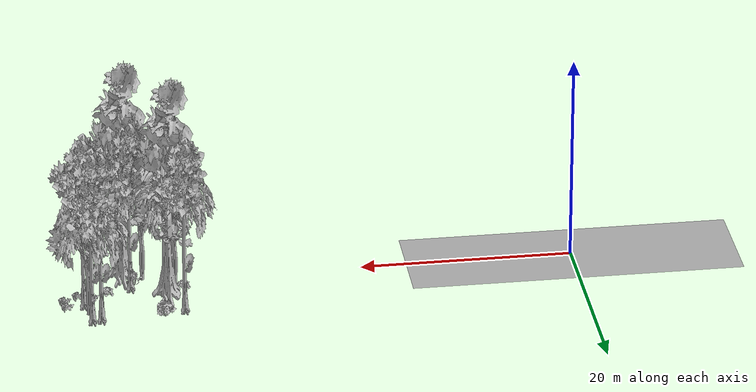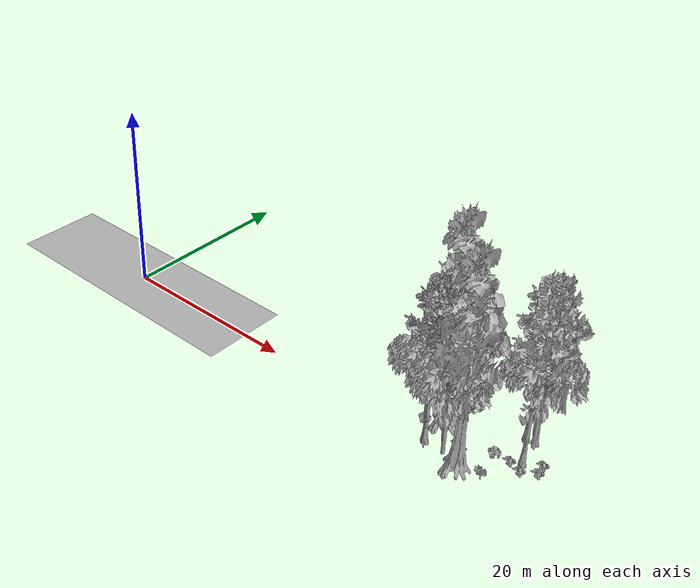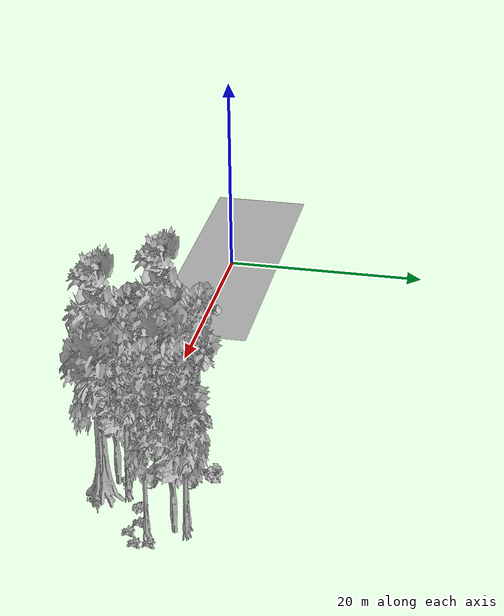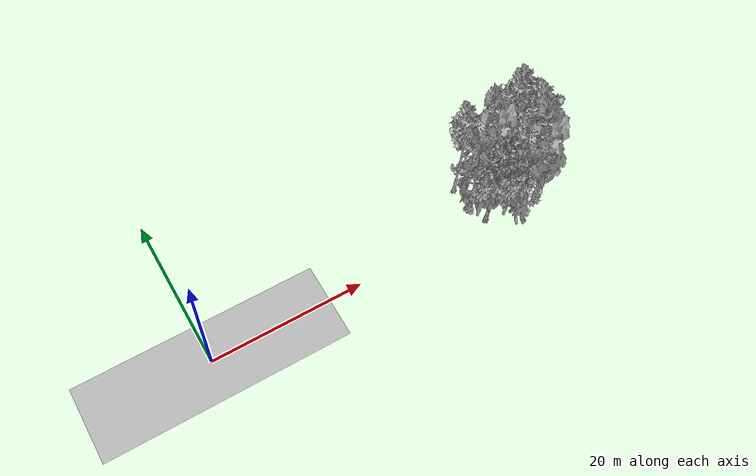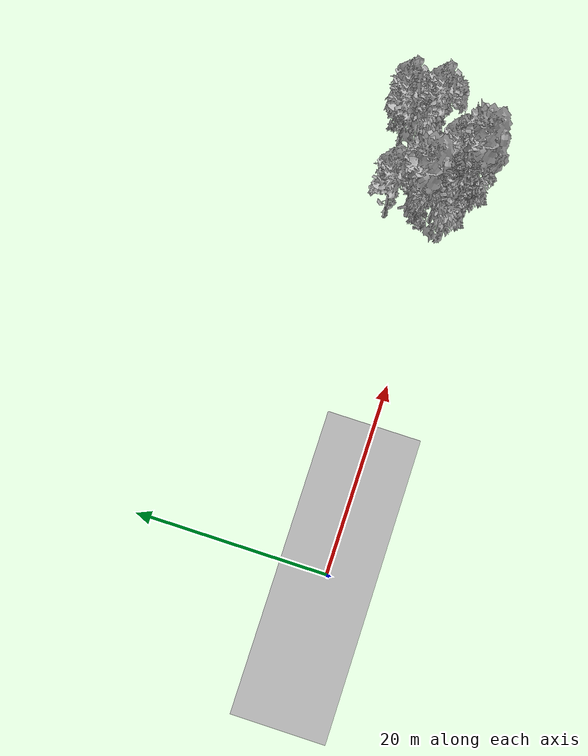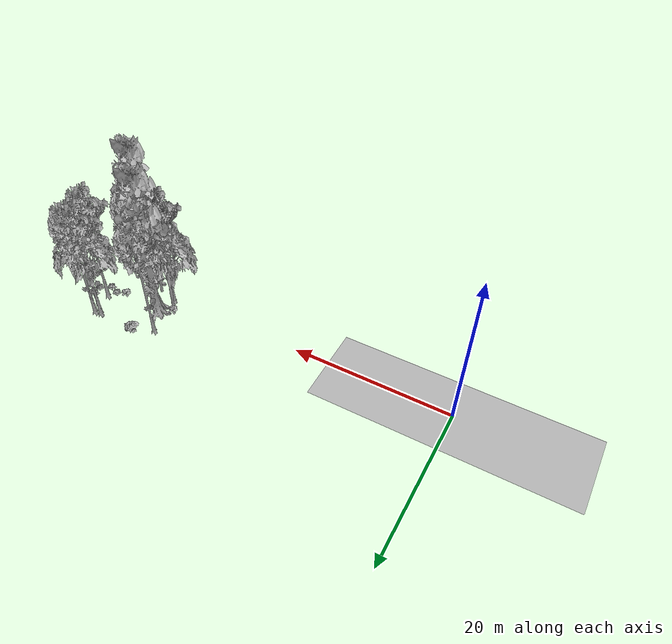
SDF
<sdf version="1.7">
 <world name="default">
  <model name="ground_plane">
   <static>1</static>
   <link name="link">
    <collision name="collision">
     <geometry><plane><normal>0 0 1</normal><size>100 100</size></plane></geometry>
     <surface><contact><ode><min_depth>0.01</min_depth><max_vel>0</max_vel></ode></contact></surface>
    </collision>
    <visual name="grass">
     <cast_shadows>0</cast_shadows>
     <geometry>
      <mesh>
       <scale>0.5814285714285714 0.18142857142857144 0.1</scale>
       <uri>file://grass_plane/meshes/grass_plane.dae</uri>
      </mesh>
     </geometry>
    </visual>
   </link>
  </model>
  <model name="Tree 24">
   <static>1</static>
   <pose>41.74323365666531 0.7387687377067191 0 1.57079 -0 0</pose>
   <link name="link">
    <collision name="collision">
     <geometry><mesh><scale>3.5 5 3.5</scale><uri>model://tree_9/meshes/tree_9.obj</uri></mesh></geometry>
    </collision>
    <visual name="visual">
     <geometry><mesh><scale>3.5 5 3.5</scale><uri>model://tree_9/meshes/tree_9.obj</uri></mesh></geometry>
    </visual>
   </link>
  </model>
  <model name="Tree 39">
   <static>1</static>
   <pose>37.53421178844465 1.0300258469718635 0 1.57079 -0 0</pose>
   <link name="link">
    <collision name="collision">
     <geometry><mesh><scale>3.5 5 3.5</scale><uri>model://tree_2/meshes/tree_2.obj</uri></mesh></geometry>
    </collision>
    <visual name="visual">
     <geometry><mesh><scale>3.5 5 3.5</scale><uri>model://tree_2/meshes/tree_2.obj</uri></mesh></geometry>
    </visual>
   </link>
  </model>
  <model name="Tree 68">
   <static>1</static>
   <pose>40.46725836753879 -0.43727353684468717 0 1.57079 -0 0</pose>
   <link name="link">
    <collision name="collision">
     <geometry><mesh><scale>3.5 5 3.5</scale><uri>model://tree_2/meshes/tree_2.obj</uri></mesh></geometry>
    </collision>
    <visual name="visual">
     <geometry><mesh><scale>3.5 5 3.5</scale><uri>model://tree_2/meshes/tree_2.obj</uri></mesh></geometry>
    </visual>
   </link>
  </model>
  <model name="Tree 99">
   <static>1</static>
   <pose>44.91978720802875 6.534674968186387 0 1.57079 -0 0</pose>
   <link name="link">
    <collision name="collision">
     <geometry><mesh><scale>3.5 5 3.5</scale><uri>model://tree_9/meshes/tree_9.obj</uri></mesh></geometry>
    </collision>
    <visual name="visual">
     <geometry><mesh><scale>3.5 5 3.5</scale><uri>model://tree_9/meshes/tree_9.obj</uri></mesh></geometry>
    </visual>
   </link>
  </model>
  <model name="Tree 147">
   <static>1</static>
   <pose>45.78109865384833 6.644941578945236 0 1.57079 -0 0</pose>
   <link name="link">
    <collision name="collision">
     <geometry><mesh><scale>3.5 5 3.5</scale><uri>model://tree_9/meshes/tree_9.obj</uri></mesh></geometry>
    </collision>
    <visual name="visual">
     <geometry><mesh><scale>3.5 5 3.5</scale><uri>model://tree_9/meshes/tree_9.obj</uri></mesh></geometry>
    </visual>
   </link>
  </model>
  <model name="Tree 180">
   <static>1</static>
   <pose>42.36621499290425 -1.1296525667263246 0 1.57079 -0 0</pose>
   <link name="link">
    <collision name="collision">
     <geometry><mesh><scale>3.5 5 3.5</scale><uri>model://tree_4/meshes/tree_4.obj</uri></mesh></geometry>
    </collision>
    <visual name="visual">
     <geometry><mesh><scale>3.5 5 3.5</scale><uri>model://tree_4/meshes/tree_4.obj</uri></mesh></geometry>
    </visual>
   </link>
  </model>
  <model name="Tree 193">
   <static>1</static>
   <pose>37.126474166906604 5.6413936673820295 0 1.57079 -0 0</pose>
   <link name="link">
    <collision name="collision">
     <geometry><mesh><scale>3.5 5 3.5</scale><uri>model://tree_9/meshes/tree_9.obj</uri></mesh></geometry>
    </collision>
    <visual name="visual">
     <geometry><mesh><scale>3.5 5 3.5</scale><uri>model://tree_9/meshes/tree_9.obj</uri></mesh></geometry>
    </visual>
   </link>
  </model>
  <model name="Tree 216">
   <static>1</static>
   <pose>46.31710641081834 3.5529073931446824 0 1.57079 -0 0</pose>
   <link name="link">
    <collision name="collision">
     <geometry><mesh><scale>3.5 5 3.5</scale><uri>model://tree_9/meshes/tree_9.obj</uri></mesh></geometry>
    </collision>
    <visual name="visual">
     <geometry><mesh><scale>3.5 5 3.5</scale><uri>model://tree_9/meshes/tree_9.obj</uri></mesh></geometry>
    </visual>
   </link>
  </model>
  <model name="Tree 219">
   <static>1</static>
   <pose>45.952495006505586 5.7372568438727924 0 1.57079 -0 0</pose>
   <link name="link">
    <collision name="collision">
     <geometry><mesh><scale>3.5 5 3.5</scale><uri>model://tree_2/meshes/tree_2.obj</uri></mesh></geometry>
    </collision>
    <visual name="visual">
     <geometry><mesh><scale>3.5 5 3.5</scale><uri>model://tree_2/meshes/tree_2.obj</uri></mesh></geometry>
    </visual>
   </link>
  </model>
  <model name="Tree 247">
   <static>1</static>
   <pose>38.30108733575983 0.07217429799259101 0 1.57079 -0 0</pose>
   <link name="link">
    <collision name="collision">
     <geometry><mesh><scale>3.5 5 3.5</scale><uri>model://tree_9/meshes/tree_9.obj</uri></mesh></geometry>
    </collision>
    <visual name="visual">
     <geometry><mesh><scale>3.5 5 3.5</scale><uri>model://tree_9/meshes/tree_9.obj</uri></mesh></geometry>
    </visual>
   </link>
  </model>
  <model name="Tree 265">
   <static>1</static>
   <pose>38.22866188104973 0.09220415026919326 0 1.57079 -0 0</pose>
   <link name="link">
    <collision name="collision">
     <geometry><mesh><scale>3.5 5 3.5</scale><uri>model://tree_9/meshes/tree_9.obj</uri></mesh></geometry>
    </collision>
    <visual name="visual">
     <geometry><mesh><scale>3.5 5 3.5</scale><uri>model://tree_9/meshes/tree_9.obj</uri></mesh></geometry>
    </visual>
   </link>
  </model>
  <model name="Tree 268">
   <static>1</static>
   <pose>38.41611702322423 2.9727805636021927 0 1.57079 -0 0</pose>
   <link name="link">
    <collision name="collision">
     <geometry><mesh><scale>3.5 5 3.5</scale><uri>model://tree_4/meshes/tree_4.obj</uri></mesh></geometry>
    </collision>
    <visual name="visual">
     <geometry><mesh><scale>3.5 5 3.5</scale><uri>model://tree_4/meshes/tree_4.obj</uri></mesh></geometry>
    </visual>
   </link>
  </model>
  <model name="Bush 9">
   <static>1</static>
   <pose>47.951672995649986 4.1469242273542015 0 1.57079 -0 0</pose>
   <link name="link">
    <collision name="collision">
     <geometry><mesh><scale>2 2 2</scale><uri>model://bush_2/meshes/bush_2.obj</uri></mesh></geometry>
     <surface><contact><collide_without_contact>false</collide_without_contact></contact></surface>
    </collision>
    <visual name="visual">
     <geometry><mesh><scale>2 2 2</scale><uri>model://bush_2/meshes/bush_2.obj</uri></mesh></geometry>
    </visual>
   </link>
  </model>
  <model name="Bush 34">
   <static>1</static>
   <pose>36.97048295065976 1.9924613997104146 0 1.57079 -0 0</pose>
   <link name="link">
    <collision name="collision">
     <geometry><mesh><scale>2 2 2</scale><uri>model://bush_3/meshes/bush_3.obj</uri></mesh></geometry>
     <surface><contact><collide_without_contact>false</collide_without_contact></contact></surface>
    </collision>
    <visual name="visual">
     <geometry><mesh><scale>2 2 2</scale><uri>model://bush_3/meshes/bush_3.obj</uri></mesh></geometry>
    </visual>
   </link>
  </model>
  <model name="Bush 46">
   <static>1</static>
   <pose>41.40418166435714 0.5655573906331632 0 1.57079 -0 0</pose>
   <link name="link">
    <collision name="collision">
     <geometry><mesh><scale>2 2 2</scale><uri>model://bush_4/meshes/bush_4.obj</uri></mesh></geometry>
     <surface><contact><collide_without_contact>false</collide_without_contact></contact></surface>
    </collision>
    <visual name="visual">
     <geometry><mesh><scale>2 2 2</scale><uri>model://bush_4/meshes/bush_4.obj</uri></mesh></geometry>
    </visual>
   </link>
  </model>
  <model name="Bush 96">
   <static>1</static>
   <pose>46.78227170409484 2.171595677008227 0 1.57079 -0 0</pose>
   <link name="link">
    <collision name="collision">
     <geometry><mesh><scale>2 2 2</scale><uri>model://bush_2/meshes/bush_2.obj</uri></mesh></geometry>
     <surface><contact><collide_without_contact>false</collide_without_contact></contact></surface>
    </collision>
    <visual name="visual">
     <geometry><mesh><scale>2 2 2</scale><uri>model://bush_2/meshes/bush_2.obj</uri></mesh></geometry>
    </visual>
   </link>
  </model>
  <model name="Bush 105">
   <static>1</static>
   <pose>39.10822155712252 7.1370597909857025 0 1.57079 -0 0</pose>
   <link name="link">
    <collision name="collision">
     <geometry><mesh><scale>2 2 2</scale><uri>model://bush_1/meshes/bush_1.obj</uri></mesh></geometry>
     <surface><contact><collide_without_contact>false</collide_without_contact></contact></surface>
    </collision>
    <visual name="visual">
     <geometry><mesh><scale>2 2 2</scale><uri>model://bush_1/meshes/bush_1.obj</uri></mesh></geometry>
    </visual>
   </link>
  </model>
  <model name="Bush 187">
   <static>1</static>
   <pose>38.77588191696269 2.425976600083967 0 1.57079 -0 0</pose>
   <link name="link">
    <collision name="collision">
     <geometry><mesh><scale>2 2 2</scale><uri>model://bush_2/meshes/bush_2.obj</uri></mesh></geometry>
     <surface><contact><collide_without_contact>false</collide_without_contact></contact></surface>
    </collision>
    <visual name="visual">
     <geometry><mesh><scale>2 2 2</scale><uri>model://bush_2/meshes/bush_2.obj</uri></mesh></geometry>
    </visual>
   </link>
  </model>
  <model name="Bush 224">
   <static>1</static>
   <pose>44.83490595498695 -0.9594625876167928 0 1.57079 -0 0</pose>
   <link name="link">
    <collision name="collision">
     <geometry><mesh><scale>2 2 2</scale><uri>model://bush_5/meshes/bush_5.obj</uri></mesh></geometry>
     <surface><contact><collide_without_contact>false</collide_without_contact></contact></surface>
    </collision>
    <visual name="visual">
     <geometry><mesh><scale>2 2 2</scale><uri>model://bush_5/meshes/bush_5.obj</uri></mesh></geometry>
    </visual>
   </link>
  </model>
  <model name="Bush 290">
   <static>1</static>
   <pose>44.16534644941686 2.446400187957135 0 1.57079 -0 0</pose>
   <link name="link">
    <collision name="collision">
     <geometry><mesh><scale>2 2 2</scale><uri>model://bush_3/meshes/bush_3.obj</uri></mesh></geometry>
     <surface><contact><collide_without_contact>false</collide_without_contact></contact></surface>
    </collision>
    <visual name="visual">
     <geometry><mesh><scale>2 2 2</scale><uri>model://bush_3/meshes/bush_3.obj</uri></mesh></geometry>
    </visual>
   </link>
  </model>
  <model name="Bush 306">
   <static>1</static>
   <pose>45.4960652022627 2.6836630426813493 0 1.57079 -0 0</pose>
   <link name="link">
    <collision name="collision">
     <geometry><mesh><scale>2 2 2</scale><uri>model://bush_2/meshes/bush_2.obj</uri></mesh></geometry>
     <surface><contact><collide_without_contact>false</collide_without_contact></contact></surface>
    </collision>
    <visual name="visual">
     <geometry><mesh><scale>2 2 2</scale><uri>model://bush_2/meshes/bush_2.obj</uri></mesh></geometry>
    </visual>
   </link>
  </model>
  <model name="Bush 319">
   <static>1</static>
   <pose>48.11087121282375 3.0067537290739423 0 1.57079 -0 0</pose>
   <link name="link">
    <collision name="collision">
     <geometry><mesh><scale>2 2 2</scale><uri>model://bush_2/meshes/bush_2.obj</uri></mesh></geometry>
     <surface><contact><collide_without_contact>false</collide_without_contact></contact></surface>
    </collision>
    <visual name="visual">
     <geometry><mesh><scale>2 2 2</scale><uri>model://bush_2/meshes/bush_2.obj</uri></mesh></geometry>
    </visual>
   </link>
  </model>
 </world>
</sdf>
